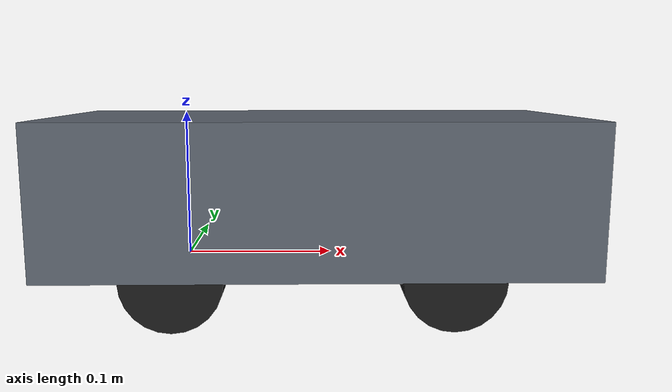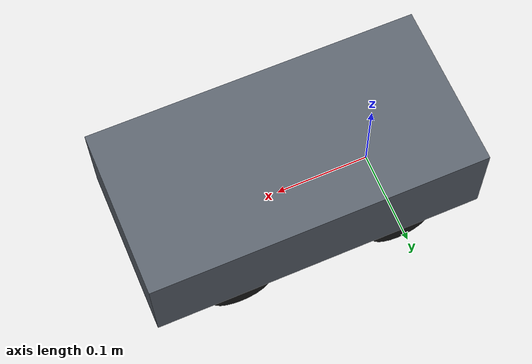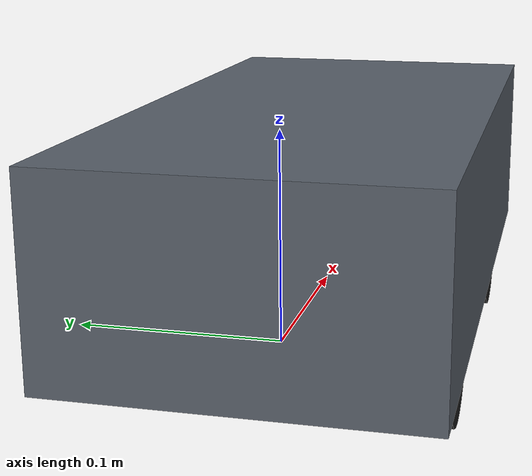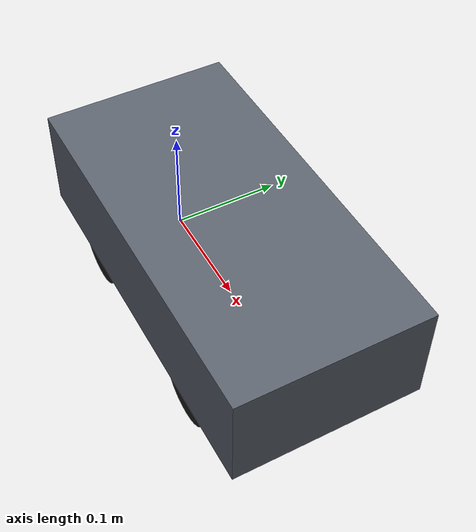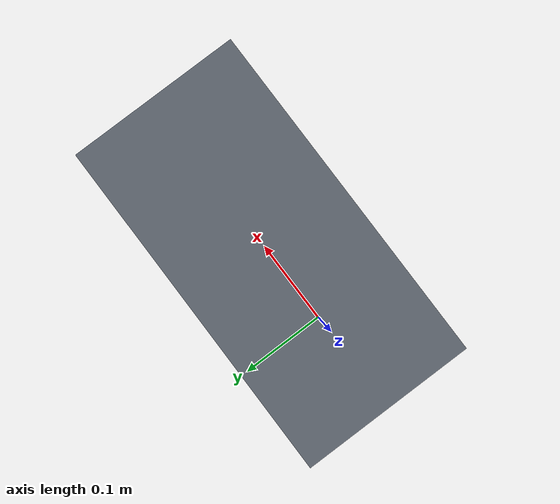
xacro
<?xml version="1.0"?>
<robot xmlns:xacro="http://www.ros.org/wiki/xacro" name="robocar">

  <!-- Batalla (L): 17.5 cm — fuente: memoria TFG2, modelo del sistema -->
  <xacro:property name="wheelbase"      value="0.175"/>
  <!-- Via (D): 14 cm — fuente: memoria TFG2, modelo del sistema -->
  <xacro:property name="track_width"    value="0.140"/>
  <!-- Ruedas de 6.5 cm de diametro — fuente: memoria TFG2 -->
  <xacro:property name="wheel_radius"   value="0.0325"/>
  <!-- Ancho de rueda: 2.6 cm (medido jul 2026) -->
  <xacro:property name="wheel_width"    value="0.026"/>
  <!-- Chasis (medido jul 2026): 35 cm largo x 17.5 cm ancho max x 13 cm de
       alto DESDE EL SUELO (la caja parte de la altura del eje: 13 - 3.25) -->
  <xacro:property name="chassis_length" value="0.350"/>
  <xacro:property name="chassis_width"  value="0.175"/>
  <xacro:property name="chassis_height" value="0.0975"/>
  <!-- Voladizo trasero: 8.5-9 cm (medido jul 2026) -->
  <xacro:property name="chassis_rear_overhang" value="0.085"/>

  <!-- Placeholders de sensores reescalados al tamano real del chasis -->

  <!-- Sensores: posicion respecto a base_link (centro eje trasero).
       x adelante, y izquierda, z arriba desde la altura del eje. -->
  <!-- TODO(medir): RPLidar C1 (donde se vaya a montar; z = altura del plano
       de barrido sobre el eje). Si el conector USB queda hacia atras, dejar
       yaw=0; si no, ajustar la rotacion. -->
  <xacro:property name="laser_x"   value="0.070"/>
  <xacro:property name="laser_z"   value="0.0275"/>
  <!-- IMU (confirmado jul 2026): 21-22cm del eje trasero, chip a 10cm del
       suelo, centrado. -->
  <xacro:property name="imu_x"     value="0.210"/>
  <xacro:property name="imu_z"     value="0.0675"/>
  <!-- Camara: DESMONTADA (jul 2026, mastil retirado). Reactivar con el flag
       si vuelve el lane-following. -->
  <xacro:property name="camera_mounted" value="false"/>
  <xacro:property name="camera_x"  value="0.200"/>
  <xacro:property name="camera_z"  value="0.070"/>
  <xacro:property name="us_x"      value="0.250"/>
  <xacro:property name="us_side_x" value="0.240"/>
  <xacro:property name="us_y"      value="0.0525"/>
  <xacro:property name="us_z"      value="0.0375"/>

  <!-- ══════════════ materiales (colores en Foxglove/RViz) ══════════════ -->
  <material name="body_grey"><color rgba="0.35 0.38 0.42 1"/></material>
  <material name="wheel_black"><color rgba="0.10 0.10 0.10 1"/></material>
  <material name="sensor_blue"><color rgba="0.20 0.45 0.85 1"/></material>
  <material name="lidar_red"><color rgba="0.80 0.20 0.20 1"/></material>

  <!-- ══════════════ macro de rueda ══════════════ -->
  <xacro:macro name="wheel" params="name x y">
    <link name="${name}">
      <visual>
        <geometry><cylinder radius="${wheel_radius}" length="${wheel_width}"/></geometry>
        <origin rpy="${pi/2} 0 0"/>
        <material name="wheel_black"/>
      </visual>
    </link>
    <joint name="${name}_joint" type="fixed">
      <parent link="base_link"/>
      <child link="${name}"/>
      <origin xyz="${x} ${y} 0"/>
    </joint>
  </xacro:macro>

  <!-- ══════════════ estructura ══════════════ -->

  <!-- proyección en el suelo (la usa Nav2) -->
  <link name="base_footprint"/>

  <!-- centro del eje trasero, a la altura del eje -->
  <link name="base_link">
    <visual>
      <geometry><box size="${chassis_length} ${chassis_width} ${chassis_height}"/></geometry>
      <!-- la caja del chasis se centra respecto a la batalla -->
      <origin xyz="${chassis_length/2 - chassis_rear_overhang} 0 ${chassis_height/2}"/>
      <material name="body_grey"/>
    </visual>
  </link>

  <joint name="base_footprint_joint" type="fixed">
    <parent link="base_link"/>
    <child link="base_footprint"/>
    <origin xyz="0 0 ${-wheel_radius}"/>
  </joint>

  <!-- ruedas -->
  <xacro:wheel name="rear_left_wheel"   x="0"            y="${track_width/2}"/>
  <xacro:wheel name="rear_right_wheel"  x="0"            y="${-track_width/2}"/>
  <xacro:wheel name="front_left_wheel"  x="${wheelbase}" y="${track_width/2}"/>
  <xacro:wheel name="front_right_wheel" x="${wheelbase}" y="${-track_width/2}"/>

  <!-- LIDAR: frame "laser" (el que publica rplidar_ros en /scan) -->
  <link name="laser">
    <visual>
      <geometry><cylinder radius="0.035" length="0.04"/></geometry>
      <material name="lidar_red"/>
    </visual>
  </link>
  <joint name="laser_joint" type="fixed">
    <parent link="base_link"/>
    <child link="laser"/>
    <origin xyz="${laser_x} 0 ${laser_z}" rpy="0 0 ${pi}"/>
  </joint>

  <!-- IMU: frame "imu_link" (usarlo en accelerometer_node, hito 0.5) -->
  <link name="imu_link">
    <visual>
      <geometry><box size="0.02 0.015 0.003"/></geometry>
      <material name="sensor_blue"/>
    </visual>
  </link>
  <joint name="imu_joint" type="fixed">
    <parent link="base_link"/>
    <child link="imu_link"/>
    <origin xyz="${imu_x} 0 ${imu_z}"/>
  </joint>

  <!-- Cámara frontal (desmontada; se incluye solo si camera_mounted=true) -->
  <xacro:if value="${camera_mounted}">
    <link name="camera_link">
      <visual>
        <geometry><box size="0.025 0.06 0.025"/></geometry>
        <material name="sensor_blue"/>
      </visual>
    </link>
    <joint name="camera_joint" type="fixed">
      <parent link="base_link"/>
      <child link="camera_link"/>
      <origin xyz="${camera_x} 0 ${camera_z}"/>
    </joint>
  </xacro:if>

  <!-- Ultrasonidos HC-SR04 (izq / centro / der). Los laterales miran hacia
       afuera ~25 grados (TODO confirmar angulo exacto). -->
  <xacro:property name="us_yaw" value="0.436"/>
  <xacro:macro name="ultrasound" params="name x y yaw">
    <link name="${name}">
      <visual>
        <geometry><box size="0.015 0.045 0.02"/></geometry>
        <material name="sensor_blue"/>
      </visual>
    </link>
    <joint name="${name}_joint" type="fixed">
      <parent link="base_link"/>
      <child link="${name}"/>
      <origin xyz="${x} ${y} ${us_z}" rpy="0 0 ${yaw}"/>
    </joint>
  </xacro:macro>
  <xacro:ultrasound name="ultrasound_left"   x="${us_side_x}" y="${us_y}"  yaw="${us_yaw}"/>
  <xacro:ultrasound name="ultrasound_center" x="${us_x}"      y="0"        yaw="0"/>
  <xacro:ultrasound name="ultrasound_right"  x="${us_side_x}" y="${-us_y}" yaw="${-us_yaw}"/>

</robot>
